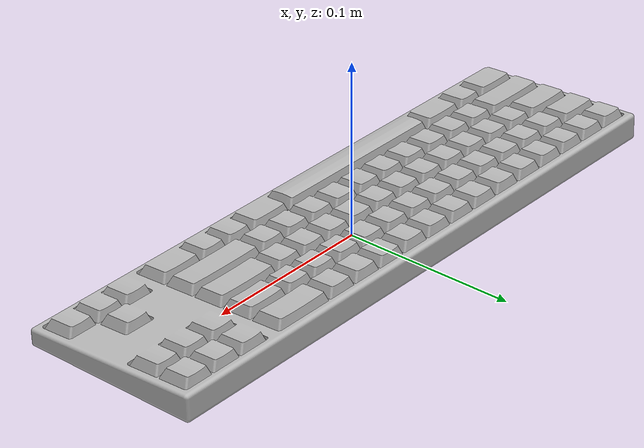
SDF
<?xml version="1.0" ?>
<sdf version="1.4">
  <model name="keyboard">
    <pose>0 0 0.0099 1.570796 0 0</pose>
    <static>false</static>
    <link name="body">
      <inertial>
        <pose>0.000509 -0.002477 -0.002392 0 0 0</pose>
        <mass>1</mass>
        <inertia>
          <ixx>0.40562e-3</ixx>
          <ixy>0.00510e-3</ixy>
          <ixz>0.00626e-3</ixz>
          <iyy>5.12339e-3</iyy>
          <iyz>0.00747e-3</iyz>
          <izz>4.74195e-3</izz>
        </inertia>
      </inertial>
      <visual name="visual">
        <cast_shadows>true</cast_shadows>
        <geometry>
         <mesh>
           <uri>package://costar_objects/sdf/keyboard/meshes/keyboard_us-semicompact-angled.obj</uri>
         </mesh>
        </geometry>
      </visual>
      <collision name="collision">
        <surface>
          <friction>
            <ode>
              <mu>0.3</mu>
              <mu2>0.3</mu2>
            </ode>
          </friction>
        </surface>
        <geometry>
         <mesh>
           <uri>package://costar_objects/sdf/keyboard/meshes/keyboard_us-semicompact-angled.stl</uri>
         </mesh>
        </geometry>
      </collision>
    </link>
  </model>
</sdf>
